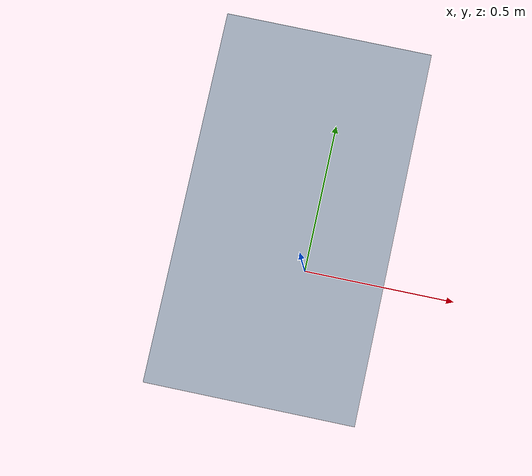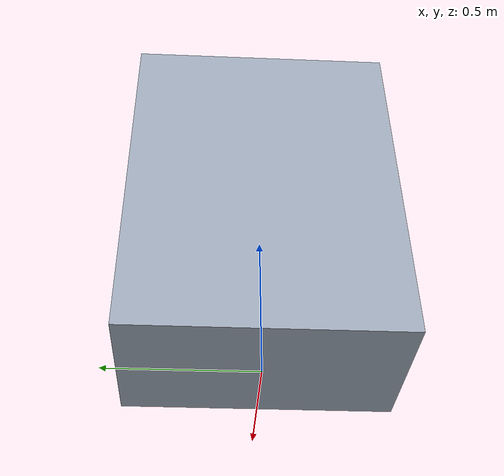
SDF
<?xml version="1.0"?>
<sdf version="1.9">
  <model name="cabinet">
    <static>true</static>
    <link name="link">
      <collision name="collision_0">
        <pose>0 0 0.6 0 0 0</pose>
        <geometry><box><size>0.5 0.9 1.2</size></box></geometry>
      </collision>
      <visual name="visual_0">
        <pose>0 0 0.6 0 0 0</pose>
        <geometry><box><size>0.5 0.9 1.2</size></box></geometry>
        <material>
          <ambient>0.62 0.66 0.72 1</ambient>
          <diffuse>0.62 0.66 0.72 1</diffuse>
        </material>
      </visual>
    </link>
  </model>
</sdf>
